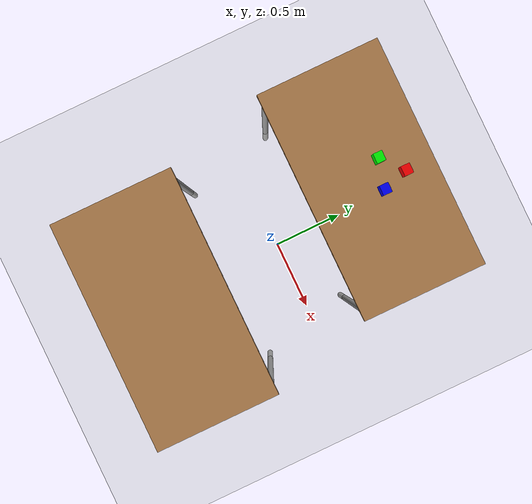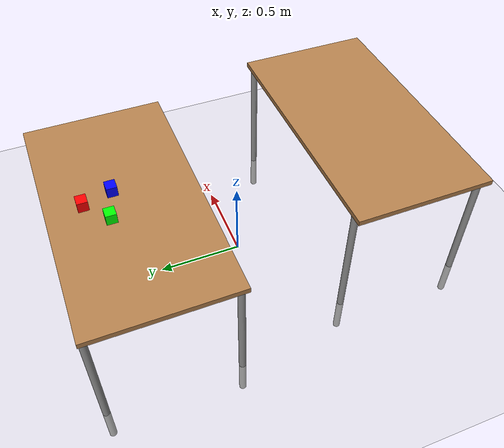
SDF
<sdf version="1.7">
 <world name="default">
  <light name="sun" type="directional">
   <pose>0 0 10 0 -0 0</pose>
   <diffuse>0.8 0.8 0.8 1</diffuse>
   <specular>0.2 0.2 0.2 1</specular>
   <attenuation>
    <range>1000</range>
    <constant>0.9</constant>
    <linear>0.01</linear>
    <quadratic>0.001</quadratic>
   </attenuation>
   <direction>-0.5 0.1 -0.9</direction>
   <spot><inner_angle>0</inner_angle><outer_angle>0</outer_angle><falloff>0</falloff></spot>
  </light>
  <model name="ground_plane">
   <static>1</static>
   <link name="link">
    <collision name="collision">
     <geometry><plane><normal>0 0 1</normal><size>100 100</size></plane></geometry>
     <surface>
      <contact><collide_bitmask>65535</collide_bitmask></contact>
      <friction><ode><mu>100</mu><mu2>50</mu2></ode></friction>
     </surface>
    </collision>
    <visual name="visual">
     <cast_shadows>0</cast_shadows>
     <geometry><plane><normal>0 0 1</normal><size>100 100</size></plane></geometry>
     <material>
      <script><uri>file://media/materials/scripts/gazebo.material</uri><name>Gazebo/Grey</name></script>
     </material>
    </visual>
   </link>
  </model>
  <gravity>0 0 -9.8</gravity>
  <magnetic_field>6e-06 2.3e-05 -4.2e-05</magnetic_field>
  <atmosphere type="adiabatic"/>
  <physics name="default_physics" default="0" type="ode">
   <max_step_size>0.001</max_step_size>
   <real_time_factor>1</real_time_factor>
   <real_time_update_rate>1000</real_time_update_rate>
  </physics>
  <scene><ambient>0.4 0.4 0.4 1</ambient><background>0.7 0.7 0.7 1</background><shadows>1</shadows></scene>
  <audio><device>default</device></audio>
  <spherical_coordinates>
   <surface_model>EARTH_WGS84</surface_model>
   <latitude_deg>0</latitude_deg>
   <longitude_deg>0</longitude_deg>
   <elevation>0</elevation>
   <heading_deg>0</heading_deg>
  </spherical_coordinates>
  <model name="unit_box_red_100_clone_0">
   <link name="link">
    <inertial>
     <mass>0.1</mass>
     <inertia>
      <ixx>5.763e-05</ixx>
      <ixy>0</ixy>
      <ixz>0</ixz>
      <iyy>6.331e-05</iyy>
      <iyz>0</iyz>
      <izz>6.119e-05</izz>
     </inertia>
    </inertial>
    <visual name="visual">
     <geometry><box><size>0.063346 0.05771 0.059872</size></box></geometry>
     <material>
      <script><name>Gazebo/Grey</name><uri>file://media/materials/scripts/gazebo.material</uri></script>
      <ambient>1 0 0 1</ambient>
      <shader type="vertex"><normal_map>__default__</normal_map></shader>
      <diffuse>0.7 0.7 0.7 1</diffuse>
      <specular>0.01 0.01 0.01 1</specular>
      <emissive>0 0 0 1</emissive>
     </material>
    </visual>
    <collision name="collision">
     <geometry><box><size>0.063346 0.05771 0.059872</size></box></geometry>
     <surface>
      <friction>
       <ode><mu>100</mu><mu2>100</mu2><fdir1>0 0 0</fdir1><slip1>0</slip1><slip2>0</slip2></ode>
       <torsional>
        <coefficient>1</coefficient>
        <patch_radius>0</patch_radius>
        <surface_radius>0</surface_radius>
        <use_patch_radius>1</use_patch_radius>
        <ode><slip>0</slip></ode>
       </torsional>
      </friction>
      <bounce><restitution_coefficient>0</restitution_coefficient><threshold>1e+06</threshold></bounce>
      <contact>
       <collide_without_contact>0</collide_without_contact>
       <collide_without_contact_bitmask>1</collide_without_contact_bitmask>
       <collide_bitmask>1</collide_bitmask>
       <ode>
        <soft_cfm>0</soft_cfm>
        <soft_erp>0.2</soft_erp>
        <kp>1e+13</kp>
        <kd>1</kd>
        <max_vel>0.01</max_vel>
        <min_depth>0</min_depth>
       </ode>
       <bullet>
        <split_impulse>1</split_impulse>
        <split_impulse_penetration_threshold>-0.01</split_impulse_penetration_threshold>
        <soft_cfm>0</soft_cfm>
        <soft_erp>0.2</soft_erp>
        <kp>1e+13</kp>
        <kd>1</kd>
       </bullet>
      </contact>
     </surface>
    </collision>
   </link>
   <static>0</static>
   <pose>-0.069204 0.862613 0.799394 0 0 -0.003117</pose>
  </model>
  <model name="unit_box_blue_100_clone">
   <link name="link">
    <inertial>
     <mass>0.1</mass>
     <inertia>
      <ixx>5.763e-05</ixx>
      <ixy>0</ixy>
      <ixz>0</ixz>
      <iyy>6.331e-05</iyy>
      <iyz>0</iyz>
      <izz>6.119e-05</izz>
     </inertia>
    </inertial>
    <visual name="visual">
     <geometry><box><size>0.063346 0.05771 0.059872</size></box></geometry>
     <material>
      <script><name>Gazebo/Grey</name><uri>file://media/materials/scripts/gazebo.material</uri></script>
      <ambient>0 0 1 1</ambient>
      <shader type="vertex"><normal_map>__default__</normal_map></shader>
      <diffuse>0.7 0.7 0.7 1</diffuse>
      <specular>0.01 0.01 0.01 1</specular>
      <emissive>0 0 0 1</emissive>
     </material>
    </visual>
    <collision name="collision">
     <geometry><box><size>0.063346 0.05771 0.059872</size></box></geometry>
     <surface>
      <friction>
       <ode><mu>100</mu><mu2>100</mu2><fdir1>0 0 0</fdir1><slip1>0</slip1><slip2>0</slip2></ode>
       <torsional>
        <coefficient>1</coefficient>
        <patch_radius>0</patch_radius>
        <surface_radius>0</surface_radius>
        <use_patch_radius>1</use_patch_radius>
        <ode><slip>0</slip></ode>
       </torsional>
      </friction>
      <bounce><restitution_coefficient>0</restitution_coefficient><threshold>1e+06</threshold></bounce>
      <contact>
       <collide_without_contact>0</collide_without_contact>
       <collide_without_contact_bitmask>1</collide_without_contact_bitmask>
       <collide_bitmask>1</collide_bitmask>
       <ode>
        <soft_cfm>0</soft_cfm>
        <soft_erp>0.2</soft_erp>
        <kp>1e+13</kp>
        <kd>1</kd>
        <max_vel>0.01</max_vel>
        <min_depth>0</min_depth>
       </ode>
       <bullet>
        <split_impulse>1</split_impulse>
        <split_impulse_penetration_threshold>-0.01</split_impulse_penetration_threshold>
        <soft_cfm>0</soft_cfm>
        <soft_erp>0.2</soft_erp>
        <kp>1e+13</kp>
        <kd>1</kd>
       </bullet>
      </contact>
     </surface>
    </collision>
   </link>
   <static>0</static>
   <pose>-0.020566 0.700418 0.799395 -9e-06 -0 -0.005622</pose>
  </model>
  <model name="unit_box_green_100">
   <link name="link">
    <inertial>
     <mass>0.1</mass>
     <inertia>
      <ixx>5.763e-05</ixx>
      <ixy>0</ixy>
      <ixz>0</ixz>
      <iyy>6.331e-05</iyy>
      <iyz>0</iyz>
      <izz>6.119e-05</izz>
     </inertia>
    </inertial>
    <visual name="visual">
     <geometry><box><size>0.063346 0.05771 0.059872</size></box></geometry>
     <material>
      <script><name>Gazebo/Grey</name><uri>file://media/materials/scripts/gazebo.material</uri></script>
      <ambient>0 1 0 1</ambient>
      <shader type="vertex"><normal_map>__default__</normal_map></shader>
      <diffuse>0.7 0.7 0.7 1</diffuse>
      <specular>0.01 0.01 0.01 1</specular>
      <emissive>0 0 0 1</emissive>
     </material>
    </visual>
    <collision name="collision">
     <geometry><box><size>0.063346 0.05771 0.059872</size></box></geometry>
     <surface>
      <friction>
       <ode><mu>100</mu><mu2>100</mu2><fdir1>0 0 0</fdir1><slip1>0</slip1><slip2>0</slip2></ode>
       <torsional>
        <coefficient>1</coefficient>
        <patch_radius>0</patch_radius>
        <surface_radius>0</surface_radius>
        <use_patch_radius>1</use_patch_radius>
        <ode><slip>0</slip></ode>
       </torsional>
      </friction>
      <bounce><restitution_coefficient>0</restitution_coefficient><threshold>1e+06</threshold></bounce>
      <contact>
       <collide_without_contact>0</collide_without_contact>
       <collide_without_contact_bitmask>1</collide_without_contact_bitmask>
       <collide_bitmask>1</collide_bitmask>
       <ode>
        <soft_cfm>0</soft_cfm>
        <soft_erp>0.2</soft_erp>
        <kp>1e+13</kp>
        <kd>1</kd>
        <max_vel>0.01</max_vel>
        <min_depth>0</min_depth>
       </ode>
       <bullet>
        <split_impulse>1</split_impulse>
        <split_impulse_penetration_threshold>-0.01</split_impulse_penetration_threshold>
        <soft_cfm>0</soft_cfm>
        <soft_erp>0.2</soft_erp>
        <kp>1e+13</kp>
        <kd>1</kd>
       </bullet>
      </contact>
     </surface>
    </collision>
   </link>
   <static>0</static>
   <pose>-0.20594 0.748184 0.79939 -8.6e-05 7.7e-05 -0.003909</pose>
  </model>
  <model name="table">
   <static>1</static>
   <link name="link">
    <collision name="surface">
     <pose>0 0 1 0 -0 0</pose>
     <geometry><box><size>1.5 0.8 0.03</size></box></geometry>
     <surface><friction><ode><mu>0.6</mu><mu2>0.6</mu2></ode></friction></surface>
    </collision>
    <visual name="visual1">
     <pose>0 0 1 0 -0 0</pose>
     <geometry><box><size>1.5 0.8 0.03</size></box></geometry>
     <material>
      <script><uri>file://media/materials/scripts/gazebo.material</uri><name>Gazebo/Wood</name></script>
     </material>
    </visual>
    <collision name="front_left_leg">
     <pose>0.68 0.38 0.5 0 -0 0</pose>
     <geometry><cylinder><radius>0.02</radius><length>1</length></cylinder></geometry>
    </collision>
    <visual name="front_left_leg">
     <pose>0.68 0.38 0.5 0 -0 0</pose>
     <geometry><cylinder><radius>0.02</radius><length>1</length></cylinder></geometry>
     <material>
      <script><uri>file://media/materials/scripts/gazebo.material</uri><name>Gazebo/Grey</name></script>
     </material>
    </visual>
    <collision name="front_right_leg">
     <pose>0.68 -0.38 0.5 0 -0 0</pose>
     <geometry><cylinder><radius>0.02</radius><length>1</length></cylinder></geometry>
    </collision>
    <visual name="front_right_leg">
     <pose>0.68 -0.38 0.5 0 -0 0</pose>
     <geometry><cylinder><radius>0.02</radius><length>1</length></cylinder></geometry>
     <material>
      <script><uri>file://media/materials/scripts/gazebo.material</uri><name>Gazebo/Grey</name></script>
     </material>
    </visual>
    <collision name="back_right_leg">
     <pose>-0.68 -0.38 0.5 0 -0 0</pose>
     <geometry><cylinder><radius>0.02</radius><length>1</length></cylinder></geometry>
    </collision>
    <visual name="back_right_leg">
     <pose>-0.68 -0.38 0.5 0 -0 0</pose>
     <geometry><cylinder><radius>0.02</radius><length>1</length></cylinder></geometry>
     <material>
      <script><uri>file://media/materials/scripts/gazebo.material</uri><name>Gazebo/Grey</name></script>
     </material>
    </visual>
    <collision name="back_left_leg">
     <pose>-0.68 0.38 0.5 0 -0 0</pose>
     <geometry><cylinder><radius>0.02</radius><length>1</length></cylinder></geometry>
    </collision>
    <visual name="back_left_leg">
     <pose>-0.68 0.38 0.5 0 -0 0</pose>
     <geometry><cylinder><radius>0.02</radius><length>1</length></cylinder></geometry>
     <material>
      <script><uri>file://media/materials/scripts/gazebo.material</uri><name>Gazebo/Grey</name></script>
     </material>
    </visual>
   </link>
   <pose>0.060209 -0.790406 -0.237136 0 -0 0</pose>
  </model>
  <model name="table_clone">
   <static>1</static>
   <link name="link">
    <collision name="surface">
     <pose>0 0 1 0 -0 0</pose>
     <geometry><box><size>1.5 0.8 0.03</size></box></geometry>
     <surface><friction><ode><mu>0.6</mu><mu2>0.6</mu2></ode></friction></surface>
    </collision>
    <visual name="visual1">
     <pose>0 0 1 0 -0 0</pose>
     <geometry><box><size>1.5 0.8 0.03</size></box></geometry>
     <material>
      <script><uri>file://media/materials/scripts/gazebo.material</uri><name>Gazebo/Wood</name></script>
     </material>
    </visual>
    <collision name="front_left_leg">
     <pose>0.68 0.38 0.5 0 -0 0</pose>
     <geometry><cylinder><radius>0.02</radius><length>1</length></cylinder></geometry>
    </collision>
    <visual name="front_left_leg">
     <pose>0.68 0.38 0.5 0 -0 0</pose>
     <geometry><cylinder><radius>0.02</radius><length>1</length></cylinder></geometry>
     <material>
      <script><uri>file://media/materials/scripts/gazebo.material</uri><name>Gazebo/Grey</name></script>
     </material>
    </visual>
    <collision name="front_right_leg">
     <pose>0.68 -0.38 0.5 0 -0 0</pose>
     <geometry><cylinder><radius>0.02</radius><length>1</length></cylinder></geometry>
    </collision>
    <visual name="front_right_leg">
     <pose>0.68 -0.38 0.5 0 -0 0</pose>
     <geometry><cylinder><radius>0.02</radius><length>1</length></cylinder></geometry>
     <material>
      <script><uri>file://media/materials/scripts/gazebo.material</uri><name>Gazebo/Grey</name></script>
     </material>
    </visual>
    <collision name="back_right_leg">
     <pose>-0.68 -0.38 0.5 0 -0 0</pose>
     <geometry><cylinder><radius>0.02</radius><length>1</length></cylinder></geometry>
    </collision>
    <visual name="back_right_leg">
     <pose>-0.68 -0.38 0.5 0 -0 0</pose>
     <geometry><cylinder><radius>0.02</radius><length>1</length></cylinder></geometry>
     <material>
      <script><uri>file://media/materials/scripts/gazebo.material</uri><name>Gazebo/Grey</name></script>
     </material>
    </visual>
    <collision name="back_left_leg">
     <pose>-0.68 0.38 0.5 0 -0 0</pose>
     <geometry><cylinder><radius>0.02</radius><length>1</length></cylinder></geometry>
    </collision>
    <visual name="back_left_leg">
     <pose>-0.68 0.38 0.5 0 -0 0</pose>
     <geometry><cylinder><radius>0.02</radius><length>1</length></cylinder></geometry>
     <material>
      <script><uri>file://media/materials/scripts/gazebo.material</uri><name>Gazebo/Grey</name></script>
     </material>
    </visual>
   </link>
   <pose>-0.109742 0.658904 -0.245542 0 -0 0</pose>
  </model>
 </world>
</sdf>
